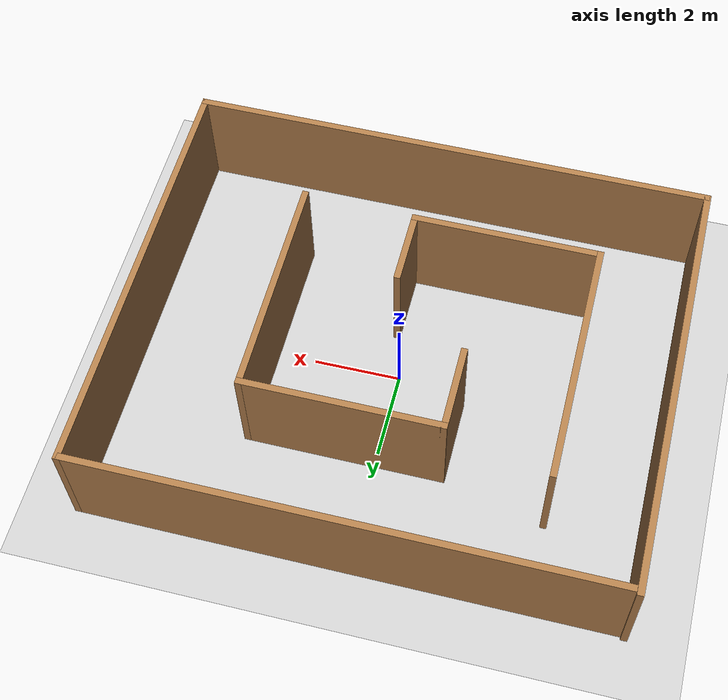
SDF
<sdf version="1.6">
 <world name="default">
  <light name="sun" type="directional">
   <pose>0 0 10 0 -0 0</pose>
   <diffuse>0.8 0.8 0.8 1</diffuse>
   <specular>0.1 0.1 0.1 1</specular>
   <attenuation>
    <range>1000</range>
    <constant>0.9</constant>
    <linear>0.01</linear>
    <quadratic>0.001</quadratic>
   </attenuation>
   <direction>-0.5 0.5 -1</direction>
  </light>
  <model name="ground_plane">
   <static>1</static>
   <link name="link">
    <collision name="collision">
     <geometry><plane><normal>0 0 1</normal><size>100 100</size></plane></geometry>
     <surface><friction><ode><mu>100</mu><mu2>50</mu2></ode></friction></surface>
    </collision>
    <visual name="visual">
     <cast_shadows>0</cast_shadows>
     <geometry><plane><normal>0 0 1</normal><size>100 100</size></plane></geometry>
     <material>
      <script><uri>file://media/materials/scripts/gazebo.material</uri><name>Gazebo/Grey</name></script>
     </material>
    </visual>
   </link>
  </model>
  <gravity>0 0 -9.8</gravity>
  <magnetic_field>6e-06 2.3e-05 -4.2e-05</magnetic_field>
  <atmosphere type="adiabatic"/>
  <physics name="default_physics" default="0" type="ode">
   <max_step_size>0.001</max_step_size>
   <real_time_factor>1</real_time_factor>
   <real_time_update_rate>1000</real_time_update_rate>
  </physics>
  <scene><ambient>0.4 0.4 0.4 1</ambient><background>0.7 0.7 0.7 1</background><shadows>1</shadows></scene>
  <spherical_coordinates>
   <surface_model>EARTH_WGS84</surface_model>
   <latitude_deg>0</latitude_deg>
   <longitude_deg>0</longitude_deg>
   <elevation>0</elevation>
   <heading_deg>0</heading_deg>
  </spherical_coordinates>
  <model name="maze">
   <pose>-0.019795 -0.00866 0 0 -0 0</pose>
   <link name="Wall_11">
    <collision name="Wall_11_Collision">
     <geometry><box><size>12.1519 0.15 2.5</size></box></geometry>
     <pose>0 0 1.25 0 -0 0</pose>
    </collision>
    <visual name="Wall_11_Visual">
     <pose>0 0 1.25 0 -0 0</pose>
     <geometry><box><size>12.1519 0.15 2.5</size></box></geometry>
     <material>
      <script><uri>file://media/materials/scripts/gazebo.material</uri><name>Gazebo/Wood</name></script>
      <ambient>1 1 1 1</ambient>
     </material>
    </visual>
    <pose>0.015295 -4.925 0 0 -0 0</pose>
   </link>
   <link name="Wall_12">
    <collision name="Wall_12_Collision">
     <geometry><box><size>9.90866 0.15 2.5</size></box></geometry>
     <pose>0 0 1.25 0 -0 0</pose>
    </collision>
    <visual name="Wall_12_Visual">
     <pose>0 0 1.25 0 -0 0</pose>
     <geometry><box><size>9.90866 0.15 2.5</size></box></geometry>
     <material>
      <script><uri>file://media/materials/scripts/gazebo.material</uri><name>Gazebo/Wood</name></script>
      <ambient>1 1 1 1</ambient>
     </material>
    </visual>
    <pose>6.01623 -0.015295 0 0 -0 1.5708</pose>
   </link>
   <link name="Wall_13">
    <collision name="Wall_13_Collision">
     <geometry><box><size>12 0.15 2.5</size></box></geometry>
     <pose>0 0 1.25 0 -0 0</pose>
    </collision>
    <visual name="Wall_13_Visual">
     <pose>0 0 1.25 0 -0 0</pose>
     <geometry><box><size>12 0.15 2.5</size></box></geometry>
     <material>
      <script><uri>file://media/materials/scripts/gazebo.material</uri><name>Gazebo/Wood</name></script>
      <ambient>1 1 1 1</ambient>
     </material>
    </visual>
    <pose>0.060641 4.86382 0 0 -0 3.14159</pose>
   </link>
   <link name="Wall_15">
    <collision name="Wall_15_Collision">
     <geometry><box><size>5.75 0.15 2.5</size></box></geometry>
     <pose>0 0 1.25 0 -0 0</pose>
    </collision>
    <visual name="Wall_15_Visual">
     <pose>0 0 1.25 0 -0 0</pose>
     <geometry><box><size>5.75 0.15 2.5</size></box></geometry>
     <material>
      <script><uri>file://media/materials/scripts/gazebo.material</uri><name>Gazebo/Wood</name></script>
      <ambient>1 1 1 1</ambient>
     </material>
    </visual>
    <pose>-3.90396 0.023462 0 0 0 -1.5708</pose>
   </link>
   <link name="Wall_16">
    <collision name="Wall_16_Collision">
     <geometry><box><size>4.39778 0.15 2.5</size></box></geometry>
     <pose>0 0 1.25 0 -0 0</pose>
    </collision>
    <visual name="Wall_16_Visual">
     <pose>0 0 1.25 0 -0 0</pose>
     <geometry><box><size>4.39778 0.15 2.5</size></box></geometry>
     <material>
      <script><uri>file://media/materials/scripts/gazebo.material</uri><name>Gazebo/Wood</name></script>
      <ambient>1 1 1 1</ambient>
     </material>
    </visual>
    <pose>-1.78012 -2.77654 0 0 -0 0</pose>
   </link>
   <link name="Wall_17">
    <collision name="Wall_17_Collision">
     <geometry><box><size>1.75 0.15 2.5</size></box></geometry>
     <pose>0 0 1.25 0 -0 0</pose>
    </collision>
    <visual name="Wall_17_Visual">
     <pose>0 0 1.25 0 -0 0</pose>
     <geometry><box><size>1.75 0.15 2.5</size></box></geometry>
     <material>
      <script><uri>file://media/materials/scripts/gazebo.material</uri><name>Gazebo/Wood</name></script>
      <ambient>1 1 1 1</ambient>
     </material>
    </visual>
    <pose>0.343712 -1.94595 0 0 -0 1.5708</pose>
   </link>
   <link name="Wall_20">
    <collision name="Wall_20_Collision">
     <geometry><box><size>2 0.15 2.5</size></box></geometry>
     <pose>0 0 1.25 0 -0 0</pose>
    </collision>
    <visual name="Wall_20_Visual">
     <pose>0 0 1.25 0 -0 0</pose>
     <geometry><box><size>2 0.15 2.5</size></box></geometry>
     <material>
      <script><uri>file://media/materials/scripts/gazebo.material</uri><name>Gazebo/Wood</name></script>
      <ambient>1 1 1 1</ambient>
     </material>
    </visual>
    <pose>-1.50802 1.34846 0 0 -0 1.5708</pose>
   </link>
   <link name="Wall_21">
    <collision name="Wall_21_Collision">
     <geometry><box><size>4.59406 0.15 2.5</size></box></geometry>
     <pose>0 0 1.25 0 -0 0</pose>
    </collision>
    <visual name="Wall_21_Visual">
     <pose>0 0 1.25 0 -0 0</pose>
     <geometry><box><size>4.59406 0.15 2.5</size></box></geometry>
     <material>
      <script><uri>file://media/materials/scripts/gazebo.material</uri><name>Gazebo/Wood</name></script>
      <ambient>1 1 1 1</ambient>
     </material>
    </visual>
    <pose>0.724007 2.27346 0 0 -0 0</pose>
   </link>
   <link name="Wall_23">
    <collision name="Wall_23_Collision">
     <geometry><box><size>5.25 0.15 2.5</size></box></geometry>
     <pose>0 0 1.25 0 -0 0</pose>
    </collision>
    <visual name="Wall_23_Visual">
     <pose>0 0 1.25 0 -0 0</pose>
     <geometry><box><size>5.25 0.15 2.5</size></box></geometry>
     <material>
      <script><uri>file://media/materials/scripts/gazebo.material</uri><name>Gazebo/Wood</name></script>
      <ambient>1 1 1 1</ambient>
     </material>
    </visual>
    <pose>2.94604 -0.276538 0 0 0 -1.5708</pose>
   </link>
   <link name="Wall_9">
    <collision name="Wall_9_Collision">
     <geometry><box><size>10 0.15 2.5</size></box></geometry>
     <pose>0 0 1.25 0 -0 0</pose>
    </collision>
    <visual name="Wall_9_Visual">
     <pose>0 0 1.25 0 -0 0</pose>
     <geometry><box><size>10 0.15 2.5</size></box></geometry>
     <material>
      <script><uri>file://media/materials/scripts/gazebo.material</uri><name>Gazebo/Wood</name></script>
      <ambient>1 1 1 1</ambient>
     </material>
    </visual>
    <pose>-6.01623 0 0 0 0 -1.5708</pose>
   </link>
   <static>1</static>
  </model>
 </world>
</sdf>
